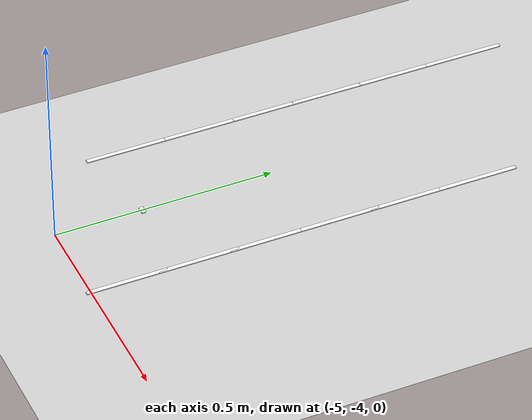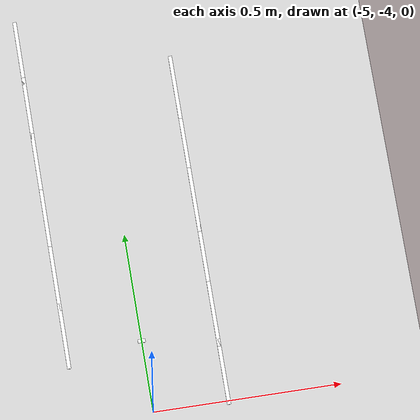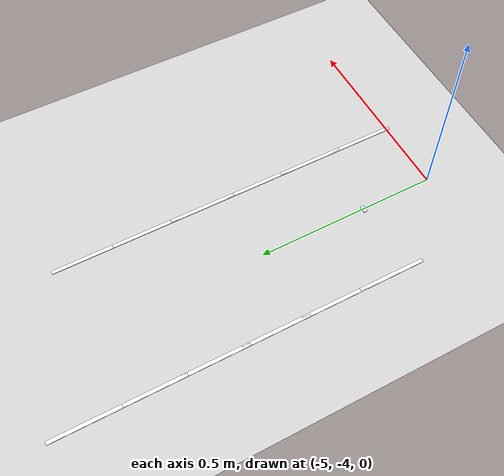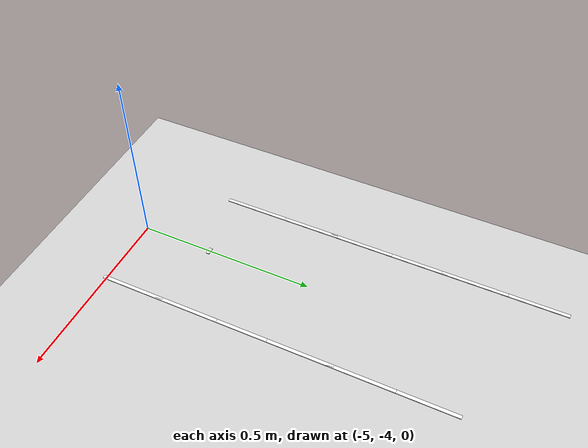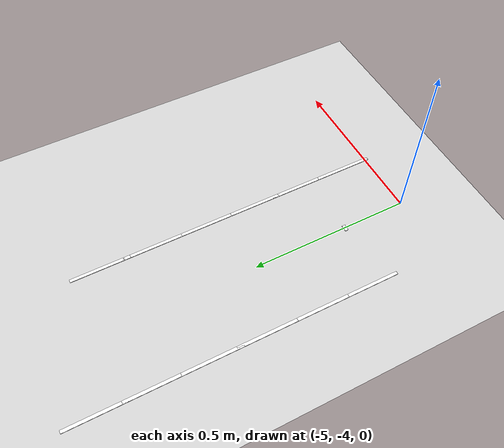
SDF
<sdf version="1.7">
 <world name="default">
  <model name="ground_plane">
   <static>1</static>
   <link name="link">
    <collision name="collision">
     <geometry><plane><normal>0 0 1</normal><size>100 100</size></plane></geometry>
     <surface>
      <contact><collide_bitmask>65535</collide_bitmask></contact>
      <friction><ode><mu>100</mu><mu2>50</mu2></ode></friction>
     </surface>
    </collision>
    <visual name="visual">
     <cast_shadows>0</cast_shadows>
     <geometry><plane><normal>0 0 1</normal><size>100 100</size></plane></geometry>
     <material>
      <script><uri>file://media/materials/scripts/gazebo.material</uri><name>Gazebo/Grey</name></script>
     </material>
    </visual>
   </link>
  </model>
  <model name="lane_line_right_342">
   <static>1</static>
   <link name="link">
    <pose>0 0 -0.004 0 -0 0</pose>
    <visual name="visual">
     <geometry><box><size>0.1833 0.01 0.01</size></box></geometry>
     <material><ambient>1 1 1 1</ambient><diffuse>1 1 1 1</diffuse></material>
    </visual>
    <collision name="collision"><geometry><box><size>0.1833 0.01 0.01</size></box></geometry></collision>
   </link>
   <pose>-5.2 -2.93878 0 0 0 -1.5708</pose>
  </model>
  <model name="lane_line_left_343">
   <static>1</static>
   <link name="link">
    <pose>0 0 -0.004 0 -0 0</pose>
    <visual name="visual">
     <geometry><box><size>0.1833 0.01 0.01</size></box></geometry>
     <material><ambient>1 1 1 1</ambient><diffuse>1 1 1 1</diffuse></material>
    </visual>
    <collision name="collision"><geometry><box><size>0.1833 0.01 0.01</size></box></geometry></collision>
   </link>
   <pose>-4.8 -3.10204 0 0 0 -1.5708</pose>
  </model>
  <model name="lane_line_right_343">
   <static>1</static>
   <link name="link">
    <pose>0 0 -0.004 0 -0 0</pose>
    <visual name="visual">
     <geometry><box><size>0.1833 0.01 0.01</size></box></geometry>
     <material><ambient>1 1 1 1</ambient><diffuse>1 1 1 1</diffuse></material>
    </visual>
    <collision name="collision"><geometry><box><size>0.1833 0.01 0.01</size></box></geometry></collision>
   </link>
   <pose>-5.2 -3.10204 0 0 0 -1.5708</pose>
  </model>
  <model name="lane_line_left_344">
   <static>1</static>
   <link name="link">
    <pose>0 0 -0.004 0 -0 0</pose>
    <visual name="visual">
     <geometry><box><size>0.1833 0.01 0.01</size></box></geometry>
     <material><ambient>1 1 1 1</ambient><diffuse>1 1 1 1</diffuse></material>
    </visual>
    <collision name="collision"><geometry><box><size>0.1833 0.01 0.01</size></box></geometry></collision>
   </link>
   <pose>-4.8 -3.26531 0 0 0 -1.5708</pose>
  </model>
  <model name="lane_line_right_344">
   <static>1</static>
   <link name="link">
    <pose>0 0 -0.004 0 -0 0</pose>
    <visual name="visual">
     <geometry><box><size>0.1833 0.01 0.01</size></box></geometry>
     <material><ambient>1 1 1 1</ambient><diffuse>1 1 1 1</diffuse></material>
    </visual>
    <collision name="collision"><geometry><box><size>0.1833 0.01 0.01</size></box></geometry></collision>
   </link>
   <pose>-5.2 -3.26531 0 0 0 -1.5708</pose>
  </model>
  <model name="lane_line_left_345">
   <static>1</static>
   <link name="link">
    <pose>0 0 -0.004 0 -0 0</pose>
    <visual name="visual">
     <geometry><box><size>0.1833 0.01 0.01</size></box></geometry>
     <material><ambient>1 1 1 1</ambient><diffuse>1 1 1 1</diffuse></material>
    </visual>
    <collision name="collision"><geometry><box><size>0.1833 0.01 0.01</size></box></geometry></collision>
   </link>
   <pose>-4.8 -3.42857 0 0 0 -1.5708</pose>
  </model>
  <model name="lane_line_right_345">
   <static>1</static>
   <link name="link">
    <pose>0 0 -0.004 0 -0 0</pose>
    <visual name="visual">
     <geometry><box><size>0.1833 0.01 0.01</size></box></geometry>
     <material><ambient>1 1 1 1</ambient><diffuse>1 1 1 1</diffuse></material>
    </visual>
    <collision name="collision"><geometry><box><size>0.1833 0.01 0.01</size></box></geometry></collision>
   </link>
   <pose>-5.2 -3.42857 0 0 0 -1.5708</pose>
  </model>
  <model name="lane_line_left_346">
   <static>1</static>
   <link name="link">
    <pose>0 0 -0.004 0 -0 0</pose>
    <visual name="visual">
     <geometry><box><size>0.1833 0.01 0.01</size></box></geometry>
     <material><ambient>1 1 1 1</ambient><diffuse>1 1 1 1</diffuse></material>
    </visual>
    <collision name="collision"><geometry><box><size>0.1833 0.01 0.01</size></box></geometry></collision>
   </link>
   <pose>-4.8 -3.59184 0 0 0 -1.5708</pose>
  </model>
  <model name="lane_line_right_346">
   <static>1</static>
   <link name="link">
    <pose>0 0 -0.004 0 -0 0</pose>
    <visual name="visual">
     <geometry><box><size>0.1833 0.01 0.01</size></box></geometry>
     <material><ambient>1 1 1 1</ambient><diffuse>1 1 1 1</diffuse></material>
    </visual>
    <collision name="collision"><geometry><box><size>0.1833 0.01 0.01</size></box></geometry></collision>
   </link>
   <pose>-5.2 -3.59184 0 0 0 -1.5708</pose>
  </model>
  <model name="lane_line_left_347">
   <static>1</static>
   <link name="link">
    <pose>0 0 -0.004 0 -0 0</pose>
    <visual name="visual">
     <geometry><box><size>0.1833 0.01 0.01</size></box></geometry>
     <material><ambient>1 1 1 1</ambient><diffuse>1 1 1 1</diffuse></material>
    </visual>
    <collision name="collision"><geometry><box><size>0.1833 0.01 0.01</size></box></geometry></collision>
   </link>
   <pose>-4.8 -3.7551 0 0 0 -1.5708</pose>
  </model>
  <model name="lane_line_right_347">
   <static>1</static>
   <link name="link">
    <pose>0 0 -0.004 0 -0 0</pose>
    <visual name="visual">
     <geometry><box><size>0.1833 0.01 0.01</size></box></geometry>
     <material><ambient>1 1 1 1</ambient><diffuse>1 1 1 1</diffuse></material>
    </visual>
    <collision name="collision"><geometry><box><size>0.1833 0.01 0.01</size></box></geometry></collision>
   </link>
   <pose>-5.2 -3.7551 0 0 0 -1.5708</pose>
  </model>
  <model name="lane_line_left_348">
   <static>1</static>
   <link name="link">
    <pose>0 0 -0.004 0 -0 0</pose>
    <visual name="visual">
     <geometry><box><size>0.1833 0.01 0.01</size></box></geometry>
     <material><ambient>1 1 1 1</ambient><diffuse>1 1 1 1</diffuse></material>
    </visual>
    <collision name="collision"><geometry><box><size>0.1833 0.01 0.01</size></box></geometry></collision>
   </link>
   <pose>-4.8 -3.91837 0 0 0 -1.5708</pose>
  </model>
  <model name="lane_line_left_349">
   <static>1</static>
   <link name="link">
    <pose>0 0 -0.004 0 -0 0</pose>
    <visual name="visual">
     <geometry><box><size>0.02 0.01 0.01</size></box></geometry>
     <material><ambient>1 1 1 1</ambient><diffuse>1 1 1 1</diffuse></material>
    </visual>
    <collision name="collision"><geometry><box><size>0.02 0.01 0.01</size></box></geometry></collision>
   </link>
   <pose>-5 -3.8 0 0 -0 0</pose>
  </model>
 </world>
</sdf>
